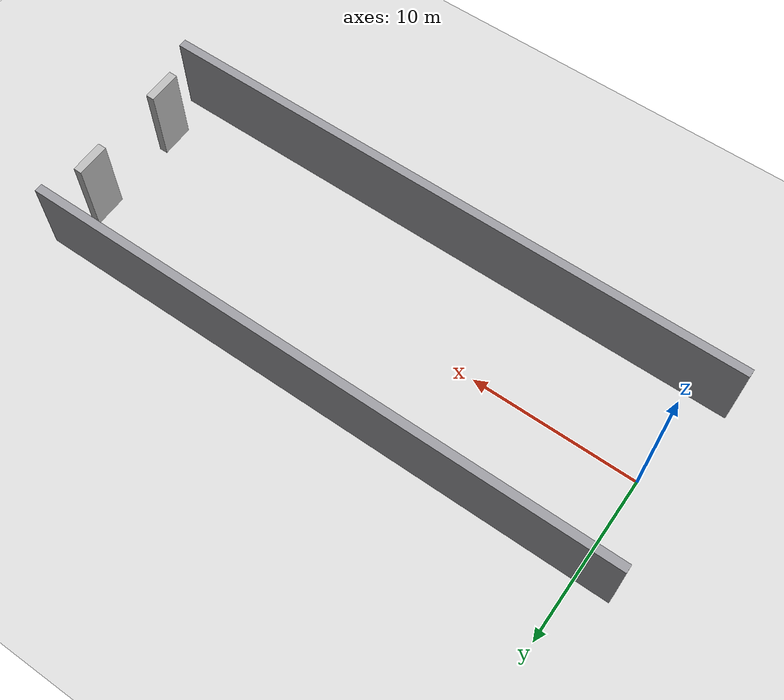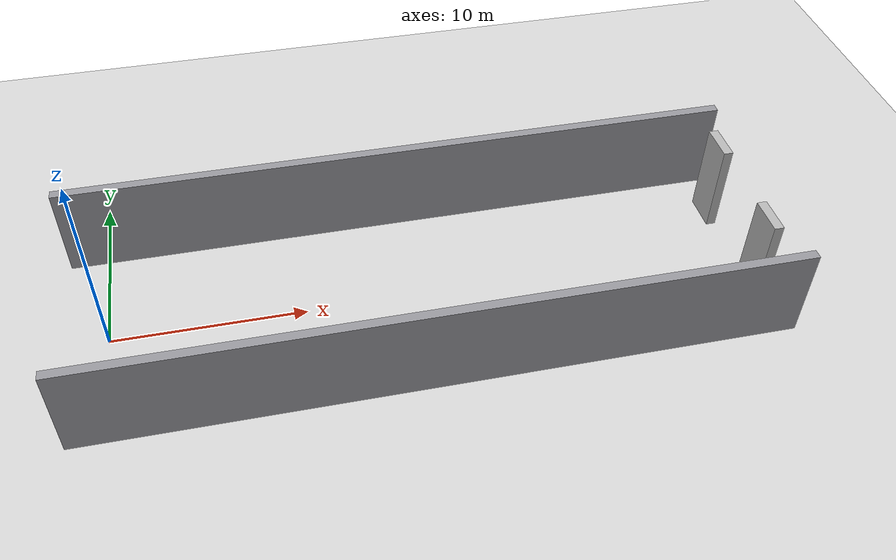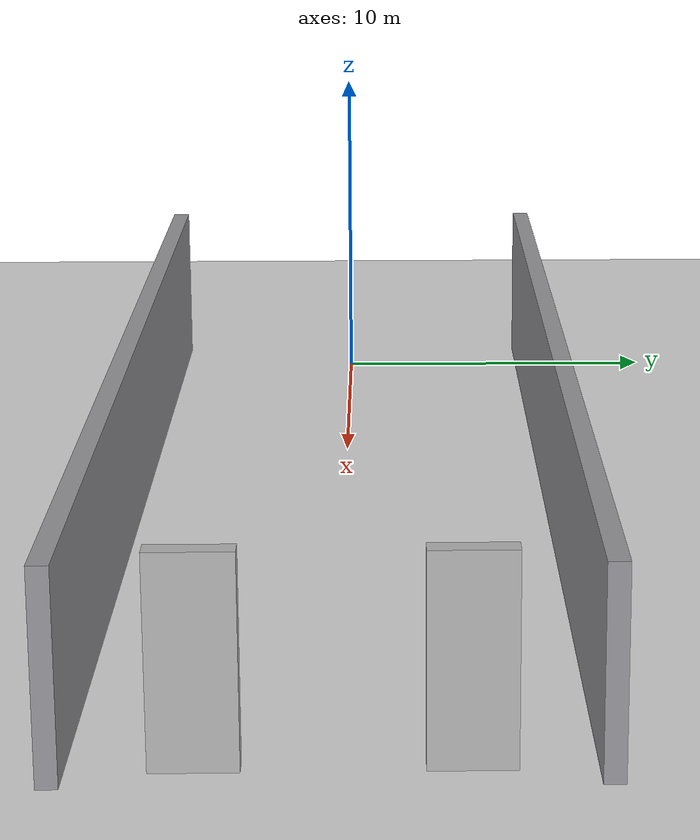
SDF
<sdf version="1.10">
 <world name="obstacle_avoidance">
  <physics type="ode">
   <max_step_size>0.0040000000000000001</max_step_size>
   <real_time_factor>1</real_time_factor>
   <real_time_update_rate>250</real_time_update_rate>
  </physics>
  <plugin name="gz::sim::systems::Physics" filename="gz-sim-physics-system"/>
  <plugin name="gz::sim::systems::UserCommands" filename="gz-sim-user-commands-system"/>
  <plugin name="gz::sim::systems::SceneBroadcaster" filename="gz-sim-scene-broadcaster-system"/>
  <plugin name="gz::sim::systems::Contact" filename="gz-sim-contact-system"/>
  <plugin name="gz::sim::systems::Imu" filename="gz-sim-imu-system"/>
  <plugin name="gz::sim::systems::AirPressure" filename="gz-sim-air-pressure-system"/>
  <plugin name="gz::sim::systems::AirSpeed" filename="gz-sim-air-speed-system"/>
  <plugin name="gz::sim::systems::ApplyLinkWrench" filename="gz-sim-apply-link-wrench-system"/>
  <plugin name="gz::sim::systems::NavSat" filename="gz-sim-navsat-system"/>
  <plugin name="gz::sim::systems::Magnetometer" filename="gz-sim-magnetometer-system"/>
  <plugin name="gz::sim::systems::Sensors" filename="gz-sim-sensors-system">
   <render_engine>ogre2</render_engine>
  </plugin>
  <plugin name="custom::OpticalFlowSystem" filename="libOpticalFlowSystem.so"/>
  <plugin name="custom::GstCameraSystem" filename="libGstCameraSystem.so"/>
  <gravity>0 0 -9.8000000000000007</gravity>
  <magnetic_field>6.0000000000000002e-06 2.3e-05 -4.1999999999999998e-05</magnetic_field>
  <atmosphere type="adiabatic"/>
  <scene>
   <grid>true</grid>
   <ambient>0.449999988 0.449999988 0.449999988 1</ambient>
   <background>0.74000001 0.769999981 0.819999993 1</background>
   <shadows>true</shadows>
  </scene>
  <spherical_coordinates>
   <surface_model>EARTH_WGS84</surface_model>
   <world_frame_orientation>ENU</world_frame_orientation>
   <latitude_deg>47.397971057728974</latitude_deg>
   <longitude_deg>8.5461637398001464</longitude_deg>
   <elevation>0</elevation>
   <heading_deg>0</heading_deg>
  </spherical_coordinates>
  <model name="ground_plane">
   <static>true</static>
   <link name="link">
    <collision name="collision">
     <geometry><plane><normal>0 0 1</normal><size>1 1</size></plane></geometry>
    </collision>
    <visual name="visual">
     <geometry><plane><normal>0 0 1</normal><size>120 120</size></plane></geometry>
     <material>
      <ambient>0.850000024 0.850000024 0.850000024 1</ambient>
      <diffuse>0.850000024 0.850000024 0.850000024 1</diffuse>
      <specular>0.400000006 0.400000006 0.400000006 1</specular>
     </material>
    </visual>
    <inertial>
     <mass>1</mass>
     <inertia><ixx>1</ixx><ixy>0</ixy><ixz>0</ixz><iyy>1</iyy><iyz>0</iyz><izz>1</izz></inertia>
    </inertial>
   </link>
  </model>
  <model name="lane_left_wall">
   <static>false</static>
   <pose>16 6 2.4999873987411871 -1.5452868411422002e-16 1.6520055580100191e-18 3.8614553100829292e-20</pose>
   <link name="link">
    <collision name="collision"><geometry><box><size>36 0.5 5</size></box></geometry></collision>
    <visual name="visual">
     <geometry><box><size>36 0.5 5</size></box></geometry>
     <material>
      <ambient>0.5 0.5 0.519999981 1</ambient>
      <diffuse>0.600000024 0.600000024 0.620000005 1</diffuse>
     </material>
    </visual>
    <inertial>
     <mass>1</mass>
     <inertia><ixx>1</ixx><ixy>0</ixy><ixz>0</ixz><iyy>1</iyy><iyz>0</iyz><izz>1</izz></inertia>
    </inertial>
   </link>
  </model>
  <model name="lane_right_wall">
   <static>false</static>
   <pose>16 -6 2.4999873987411871 -1.2772232356273819e-16 9.5017205798471489e-18 1.3757542690107612e-19</pose>
   <link name="link">
    <collision name="collision"><geometry><box><size>36 0.5 5</size></box></geometry></collision>
    <visual name="visual">
     <geometry><box><size>36 0.5 5</size></box></geometry>
     <material>
      <ambient>0.5 0.5 0.519999981 1</ambient>
      <diffuse>0.600000024 0.600000024 0.620000005 1</diffuse>
     </material>
    </visual>
    <inertial>
     <mass>1</mass>
     <inertia><ixx>1</ixx><ixy>0</ixy><ixz>0</ixz><iyy>1</iyy><iyz>0</iyz><izz>1</izz></inertia>
    </inertial>
   </link>
  </model>
  <model name="goal_gate_left">
   <static>false</static>
   <pose>33 3.0203554630279541 2.4999999991915041 -1.5571352719351095e-20 -2.8690978119421895e-21 2.0774930004863633e-22</pose>
   <link name="link">
    <collision name="collision"><geometry><box><size>0.5 2 5</size></box></geometry></collision>
    <visual name="visual"><geometry><box><size>0.5 2 5</size></box></geometry></visual>
    <inertial>
     <mass>1</mass>
     <inertia><ixx>1</ixx><ixy>0</ixy><ixz>0</ixz><iyy>1</iyy><iyz>0</iyz><izz>1</izz></inertia>
    </inertial>
   </link>
  </model>
  <model name="goal_gate_right">
   <static>false</static>
   <pose>33 -2.9691166877746582 2.4999999991915041 -3.143222662426629e-20 6.3750022951745114e-20 -3.8661696792458807e-21</pose>
   <link name="link">
    <collision name="collision"><geometry><box><size>0.5 2 5</size></box></geometry></collision>
    <visual name="visual"><geometry><box><size>0.5 2 5</size></box></geometry></visual>
    <inertial>
     <mass>1</mass>
     <inertia><ixx>1</ixx><ixy>0</ixy><ixz>0</ixz><iyy>1</iyy><iyz>0</iyz><izz>1</izz></inertia>
    </inertial>
   </link>
  </model>
  <light name="sunUTC" type="directional">
   <pose>0 0 500 0 0 0</pose>
   <intensity>1</intensity>
   <direction>0.001 0.625 -0.78000000000000003</direction>
   <diffuse>0.899999976 0.899999976 0.899999976 1</diffuse>
   <specular>0.25 0.25 0.25 1</specular>
   <attenuation><range>2000</range><linear>0</linear><constant>1</constant><quadratic>0</quadratic></attenuation>
   <spot><inner_angle>0</inner_angle><outer_angle>0</outer_angle><falloff>0</falloff></spot>
  </light>
 </world>
</sdf>
